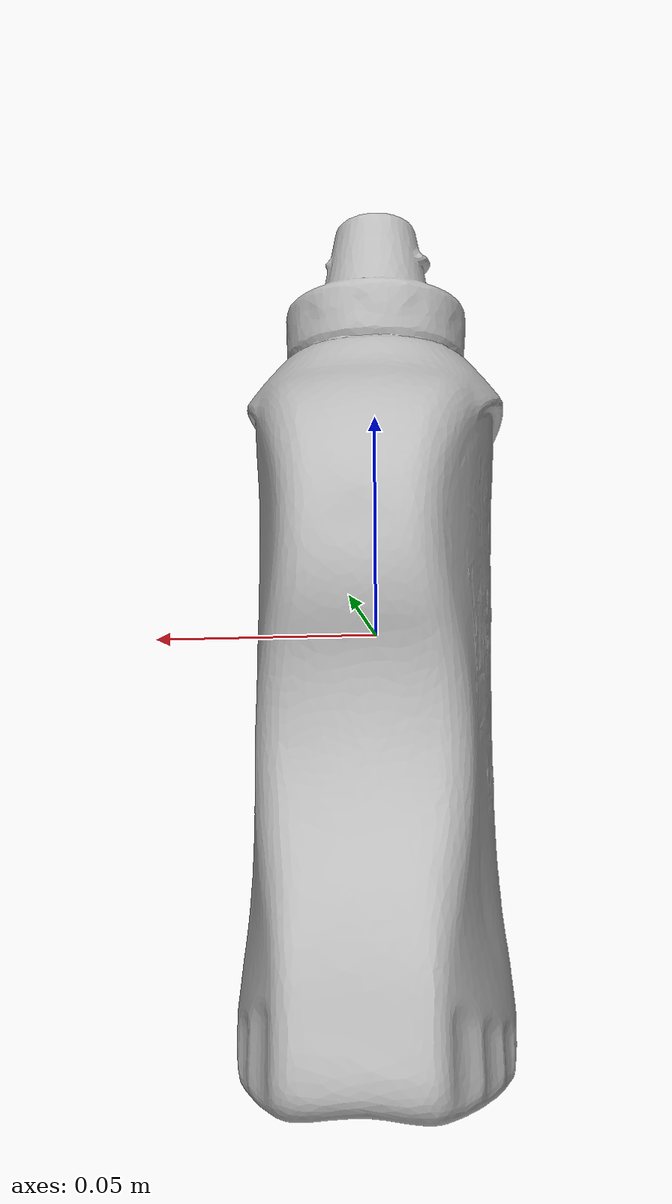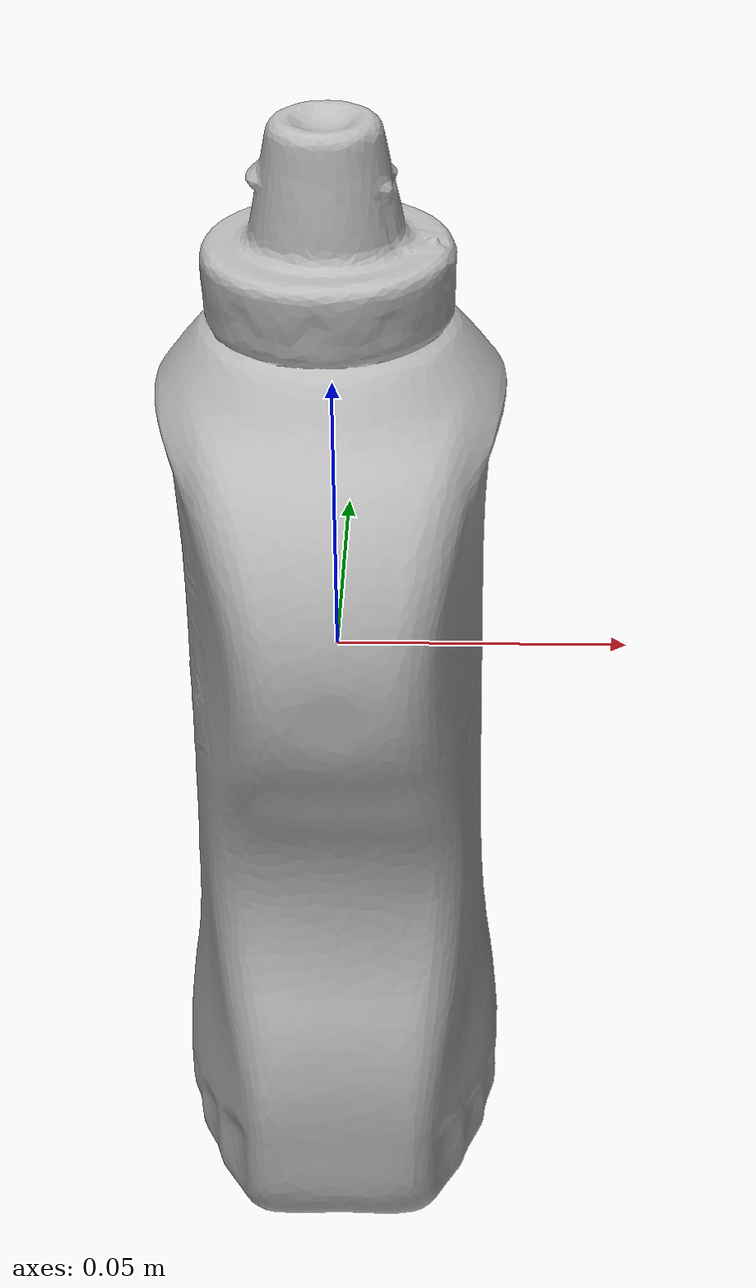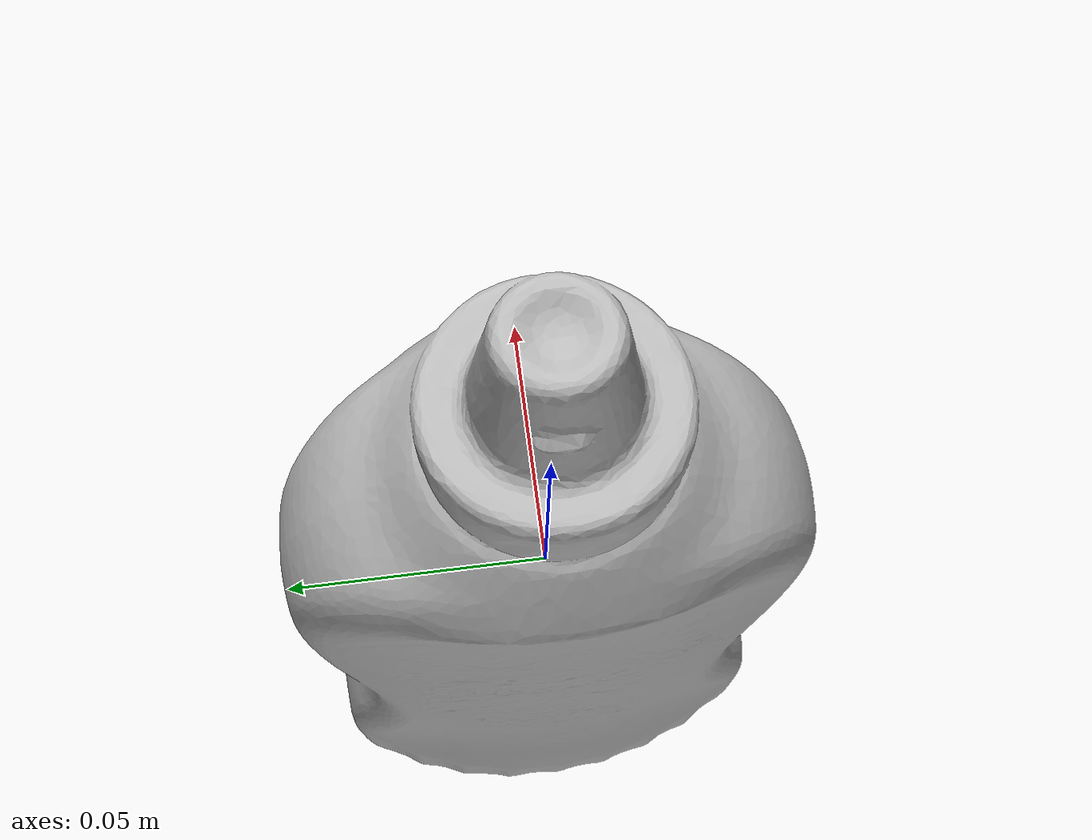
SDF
<?xml version="1.0"?>
<sdf version='1.6'>
<model name="006_mustard_bottle">

  <link name="base_link_mustard">
    <inertial>
      <mass>0.603000</mass>
      <inertia>
        <ixx>0.002009</ixx>
        <ixy>0</ixy>
        <ixz>0</ixz>
        <iyy>0.000633</iyy>
        <iyz>0</iyz>
        <izz>0.002302</izz>
      </inertia>
    </inertial>
    <visual name='base_link_mustard'>
	<pose frame=''>0 0 0 0 0 0</pose>
      <geometry>
        <mesh>
          <uri>../meshes/006_mustard_bottle_textured_updated.obj</uri>
        </mesh>
      </geometry>
    </visual>

 <collision name='box_collision'>
      <pose>0 0.0 -0.02 0 0 0</pose>
      <geometry>
        <box>
          <size>0.052200 0.090000 0.150300</size>
        </box>
      </geometry>
      <material>
        <diffuse>0 1 0 1.0</diffuse>
      </material>
    </collision>

    <collision name='point_collision1'>
      <pose>0.0 0.03 0.04 0 0 0</pose>
      <geometry>
        <sphere><radius>1e-7</radius></sphere>
      </geometry>
    </collision>

    <collision name='point_collision2'>
      <pose>0.0 -0.03 0.04 0 0 0</pose>
      <geometry>
        <sphere><radius>1e-7</radius></sphere>
      </geometry>
    </collision>

    <collision name='point_collision3'>
      <pose>0.02 0.0 0.05 0 0 0</pose>
      <geometry>
        <sphere><radius>1e-7</radius></sphere>
      </geometry>
    </collision>

    <collision name='point_collision4'>
      <pose>-0.02 0.0 0.05 0 0 0</pose>
      <geometry>
        <sphere><radius>1e-7</radius></sphere>
      </geometry>
    </collision>

    <collision name='point_collision5'>
      <pose>0.02 0.0 -0.09 0 0 0</pose>
      <geometry>
        <sphere><radius>1e-7</radius></sphere>
      </geometry>
    </collision>

    <collision name='point_collision6'>
      <pose>-0.02 0.0 -0.09 0 0 0</pose>
      <geometry>
        <sphere><radius>1e-7</radius></sphere>
      </geometry>
    </collision>

    <collision name='point_collision7'>
      <pose>0.0 0.04 -0.09 0 0 0</pose>
      <geometry>
        <sphere><radius>1e-7</radius></sphere>
      </geometry>
    </collision>

    <collision name='point_collision8'>
      <pose>0.0 -0.04 -0.09 0 0 0 </pose>
      <geometry>
        <sphere><radius>1e-7</radius></sphere>
      </geometry>
    </collision>

   </link>
</model>
</sdf>
